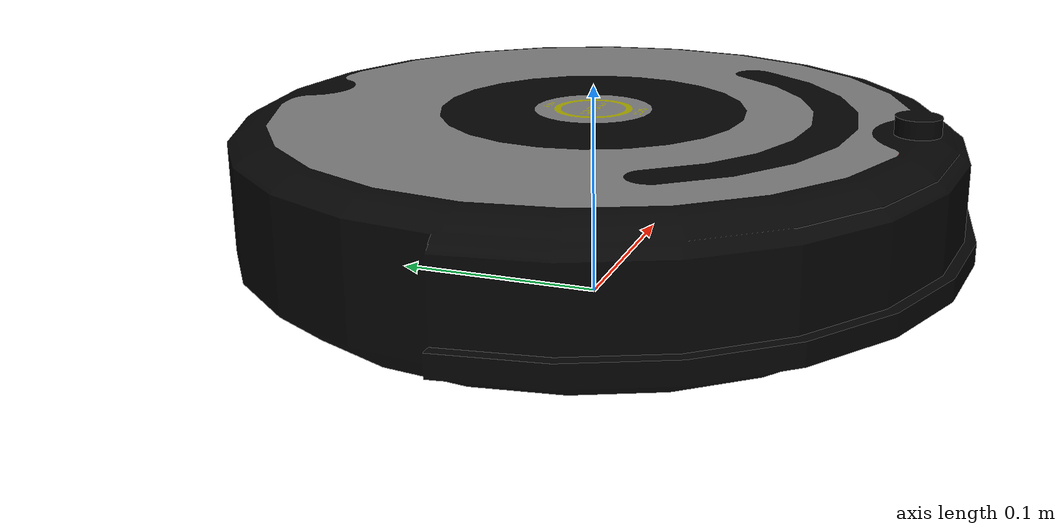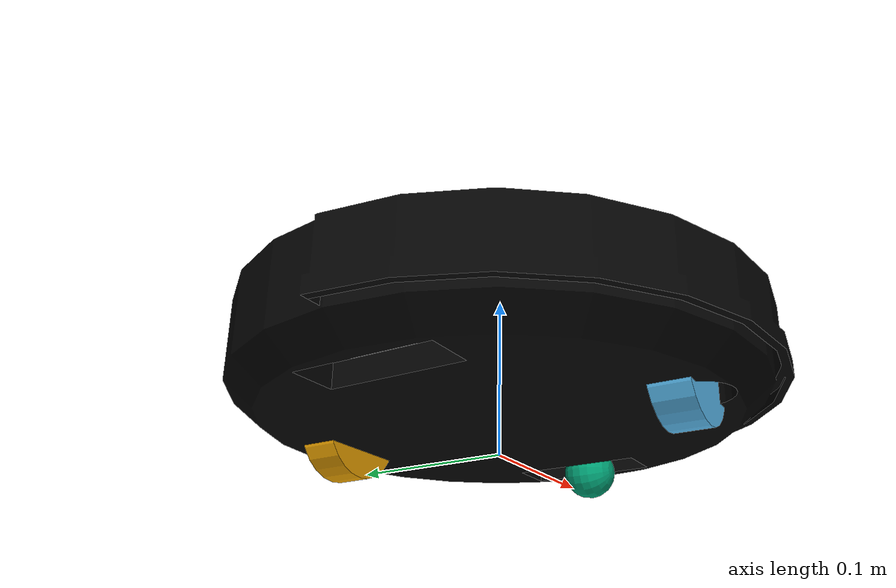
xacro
<?xml version="1.0" ?>
<robot name="create_2" xmlns:xacro="http://ros.org/wiki/xacro">
  <xacro:include filename="$(find ca_description)/urdf/create_base.urdf.xacro" />
  <xacro:include filename="$(find ca_description)/urdf/create_2_gazebo.urdf.xacro" />

  <xacro:create_base wheel_separation="0.235" base_diameter="0.3485" wheel_radius="0.033">
    <mesh filename="package://ca_description/meshes/create_2.dae" />
  </xacro:create_base>
</robot>

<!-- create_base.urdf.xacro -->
<robot xmlns:xacro="http://ros.org/wiki/xacro">

  <xacro:macro name="create_base" params="diffdrive_update_rate:=40 wheel_separation wheel_radius:=0.036 wheel_width:=0.024 wheel_torque:=0.5 wheel_accel:=0.5 mass_kg:=3.5 base_diameter *mesh visualize:=false">

    <xacro:include filename="$(find ca_description)/urdf/create_base_gazebo.urdf.xacro"/>
    <xacro:include filename="$(find ca_description)/urdf/create_caster_wheel.xacro"/>
    <xacro:include filename="$(find ca_description)/urdf/create_wheel.xacro"/>
    <xacro:include filename="$(find ca_description)/urdf/sensors/imu_sensor.xacro"/>
    <xacro:include filename="$(find ca_description)/urdf/sensors/wall_sensor.xacro"/>
    <xacro:include filename="$(find ca_description)/urdf/sensors/cliff_sensors.xacro"/>

    <link name="base_footprint">
    <visual>
      <origin xyz="0 0 0" rpy="0 0 0" />
      <geometry>
        <box size="0.001 0.001 0.001" />
      </geometry>
      <material name="Green" />
    </visual>

    <collision>
      <origin xyz="0 0 0.017" rpy="0 0 0" />
      <geometry>
        <box size="0.001 0.001 0.001" />
      </geometry>
    </collision>
    </link>

    <link name="base_link">
      <inertial>
        <mass value="2" />
        <origin xyz="0 0 0.0" />
        <inertia ixx="0.01" ixy="0.0" ixz="0.0" iyy="0.01" iyz="0.0" izz="0.5" />
      </inertial>

      <visual>
        <origin xyz=" 0 0 0.0308" rpy="0 0 0" />
        <geometry>
          <xacro:insert_block name="mesh" />
        </geometry>
      </visual>

      <collision>
        <origin xyz="0.0 0.0 0.0308" rpy="0 0 0" />
        <geometry>
          <cylinder length="0.0611632" radius="0.16495" />
        </geometry>
      </collision>
    </link>

    <joint name="base_footprint_joint" type="fixed">
      <origin xyz="0 0 0.017" rpy="0 0 0" />
      <parent link="base_footprint" />
      <child link="base_link" />
    </joint>

    <xacro:wall_sensor visualize="${visualize}"/>
    <xacro:cliff_sensors visualize="${visualize}"/>
    <xacro:imu_sensor/>

    <xacro:create_wheel prefix="left" y_offset="${wheel_separation / 2}" wheel_radius="${wheel_radius}" wheel_width="${wheel_width}"/>
    <xacro:create_wheel prefix="right" y_offset="${wheel_separation / -2}" wheel_radius="${wheel_radius}" wheel_width="${wheel_width}"/>
    <xacro:caster_wheel/>

    <!-- Simulation sensors -->
    <xacro:sim_create_base/>
  </xacro:macro>
</robot>

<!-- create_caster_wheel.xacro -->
<robot xmlns:xacro="http://ros.org/wiki/xacro">

<xacro:macro name="caster_wheel">

  <xacro:include filename="$(find ca_description)/urdf/common_properties.xacro"/>

  <xacro:property name="link_name" value="caster_wheel_link"/>
  <xacro:property name="parent_link" value="base_link"/>

  <xacro:property name="x" value="0.13"/>
  <xacro:property name="y" value="0"/>
  <xacro:property name="z" value="0"/>
  <xacro:property name="R" value="0"/>
  <xacro:property name="P" value="${pi/2}"/>
  <xacro:property name="Y" value="${pi/2}"/>

  <xacro:property name="radius" value="0.018"/>

  <link name="${link_name}">
    <xacro:dummy_inertia/>

    <visual>
      <origin xyz="0 0 0" rpy="${R} ${P} ${Y}" />
      <geometry>
        <sphere radius="${radius}" />
      </geometry>
    </visual>

    <collision>
      <origin xyz="0 0 0" rpy="${R} ${P} ${Y}" />
      <geometry>
        <sphere radius="${radius}" />
      </geometry>
    </collision>
  </link>

  <!-- fixed because there's no transmission -->
  <joint name="front_castor_joint" type="fixed">
    <origin xyz="${x} ${y} ${z}" rpy="0 0 0" />
    <parent link="${parent_link}" />
    <child link="${link_name}" />
    <axis xyz="0 1 0" />
  </joint>

</xacro:macro>

</robot>

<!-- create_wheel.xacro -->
<robot xmlns:xacro="http://ros.org/wiki/xacro">

<xacro:macro name="create_wheel" params="prefix y_offset wheel_radius wheel_width">

  <xacro:include filename="$(find ca_description)/urdf/common_properties.xacro"/>

  <xacro:property name="x" value="0"/>
  <xacro:property name="y" value="${y_offset}"/>
  <xacro:property name="z" value="0.015"/>
  <xacro:property name="R" value="0"/>
  <xacro:property name="P" value="${pi/2}"/>
  <xacro:property name="Y" value="${pi/2}"/>

  <link name="${prefix}_wheel_link">
    <xacro:dummy_inertia/>

    <visual>
      <origin xyz="0 0 0" rpy="${R} ${P} ${Y}" />
      <geometry>
        <cylinder radius="${wheel_radius}" length="${wheel_width}" />
      </geometry>
    </visual>

    <collision>
      <origin xyz="0 0 0" rpy="${R} ${P} ${Y}" />
      <geometry>
        <cylinder radius="${wheel_radius}" length="${wheel_width}" />
      </geometry>
    </collision>
  </link>

 <joint name="${prefix}_wheel_joint" type="continuous">
    <origin xyz="${x} ${y} ${z}" rpy="0 0 0" />
    <parent link="base_link" />
    <child link="${prefix}_wheel_link" />
    <axis xyz="0 1 0" />
  </joint>
</xacro:macro>

</robot>

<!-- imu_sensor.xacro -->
<robot xmlns:xacro="http://ros.org/wiki/xacro">

<xacro:macro name="imu_sensor">

  <xacro:include filename="$(find ca_description)/urdf/common_properties.xacro"/>
  <xacro:include filename="$(find ca_description)/urdf/sensors/imu_sensor_gazebo.xacro"/>

  <xacro:property name="parent_link" value="base_link"/>
  <xacro:property name="link_name" value="gyro_link"/>

  <xacro:property name="x" value="0"/>
  <xacro:property name="y" value="0"/>
  <xacro:property name="z" value="0.04"/>
  <xacro:property name="R" value="0"/>
  <xacro:property name="P" value="0"/>
  <xacro:property name="Y" value="0"/>

  <joint name="gyro_joint" type="fixed">
    <axis xyz="0 1 0" />
    <origin xyz="${x} ${y} ${z}" rpy="${R} ${P} ${Y}"/>
    <parent link="${parent_link}" />
    <child link="${link_name}" />
  </joint>

  <link name="${link_name}">
    <xacro:dummy_inertia/>
  </link>

  <xacro:sim_imu/>

</xacro:macro>

</robot>

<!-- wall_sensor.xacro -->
<robot xmlns:xacro="http://ros.org/wiki/xacro">

<xacro:macro name="wall_sensor" params="visualize:=false">

  <xacro:include filename="$(find ca_description)/urdf/common_properties.xacro"/>
  <xacro:include filename="$(find ca_description)/urdf/sensors/wall_sensor_gazebo.xacro"/>

  <xacro:property name="x" value="0.09"/>
  <xacro:property name="y" value="-0.120"/>
  <xacro:property name="z" value="0.042"/>
  <xacro:property name="R" value="0"/>
  <xacro:property name="P" value="0"/>
  <xacro:property name="Y" value="-1.0"/>

  <xacro:property name="parent_link" value="base_link"/>

  <joint name="base_wall_sensor_joint" type="fixed">
    <origin xyz="${x} ${y} ${z}" rpy="${R} ${P} ${Y}" />
    <parent link="${parent_link}" />
    <child link="wall_sensor_link" />
  </joint>

  <link name="wall_sensor_link">
    <xacro:dummy_inertia/>
  </link>

  <xacro:sim_create_wall_sensor visualize="${visualize}"/>

</xacro:macro>

</robot>

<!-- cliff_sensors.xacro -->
<robot xmlns:xacro="http://ros.org/wiki/xacro">

<xacro:macro name="cliff_sensors" params="visualize:=false">

  <xacro:include filename="$(find ca_description)/urdf/common_properties.xacro"/>
  <xacro:include filename="$(find ca_description)/urdf/sensors/cliff_sensors_gazebo.xacro"/>

  <xacro:property name="parent_link" value="base_link"/>

  <xacro:property name="name_side_left" value="side_left"/>
  <xacro:property name="name_side_right" value="side_right"/>
  <xacro:property name="name_front_left" value="front_left"/>
  <xacro:property name="name_front_right" value="front_right"/>

  <joint name="${name_side_left}_cliff_sensor_joint" type="fixed">
    <origin xyz="0.07 0.14 0.01" rpy="0 ${pi/2} 0" />
    <parent link="${parent_link}" />
    <child link="${name_side_left}_cliff_sensor_link" />
  </joint>

  <joint name="${name_side_right}_cliff_sensor_joint" type="fixed">
    <origin xyz="0.07 -0.14 0.01" rpy="0 ${pi/2} 0" />
    <parent link="${parent_link}" />
    <child link="${name_side_right}_cliff_sensor_link" />
  </joint>

  <joint name="${name_front_left}_front_cliff_sensor_joint" type="fixed">
    <origin xyz="0.15 0.04 0.01" rpy="0 ${pi/2} 0" />
    <parent link="${parent_link}" />
    <child link="${name_front_left}_cliff_sensor_link" />
  </joint>

  <joint name="${name_front_right}_cliff_sensor_joint" type="fixed">
    <origin xyz="0.15 -0.04 0.01" rpy="0 ${pi/2} 0" />
    <parent link="${parent_link}" />
    <child link="${name_front_right}_cliff_sensor_link" />
  </joint>

  <link name="${name_side_left}_cliff_sensor_link">
    <xacro:dummy_inertia/>
  </link>

  <link name="${name_side_right}_cliff_sensor_link">
    <xacro:dummy_inertia/>
  </link>

  <link name="${name_front_left}_cliff_sensor_link">
    <xacro:dummy_inertia/>
  </link>

  <link name="${name_front_right}_cliff_sensor_link">
    <xacro:dummy_inertia/>
  </link>

  <xacro:sim_create_cliff_sensors visualize="${visualize}"/>

</xacro:macro>

</robot>

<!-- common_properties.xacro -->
<robot xmlns:xacro="http://ros.org/wiki/xacro">

<xacro:macro name="dummy_inertia">
  <inertial>
    <mass value="0.01" />
    <origin xyz="0 0 0" />
    <inertia ixx="0.001" ixy="0.0" ixz="0.0" iyy="0.001" iyz="0.0" izz="0.001" />
  </inertial>
</xacro:macro>

</robot>
